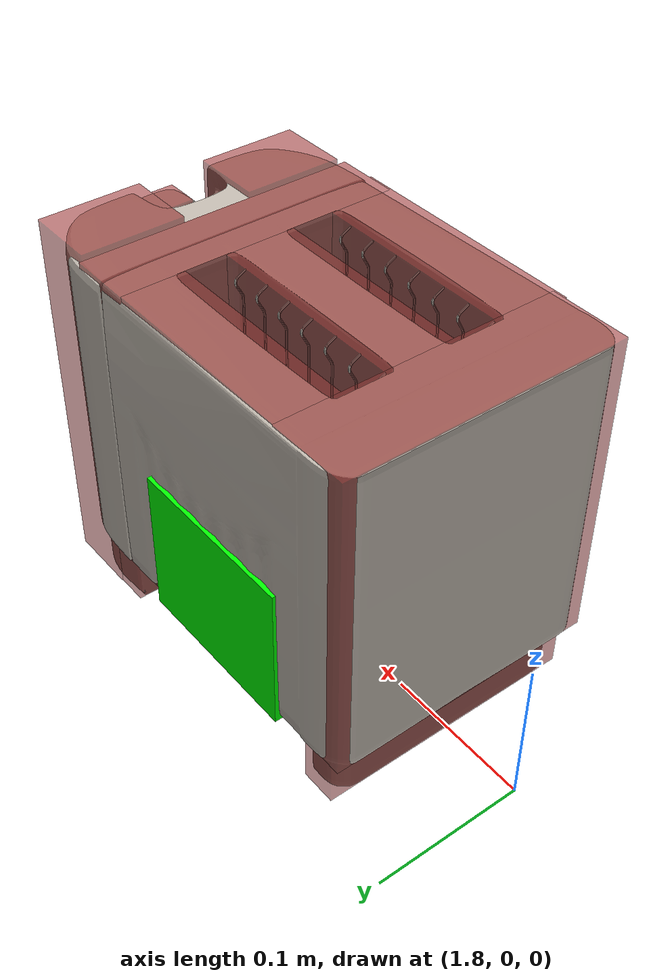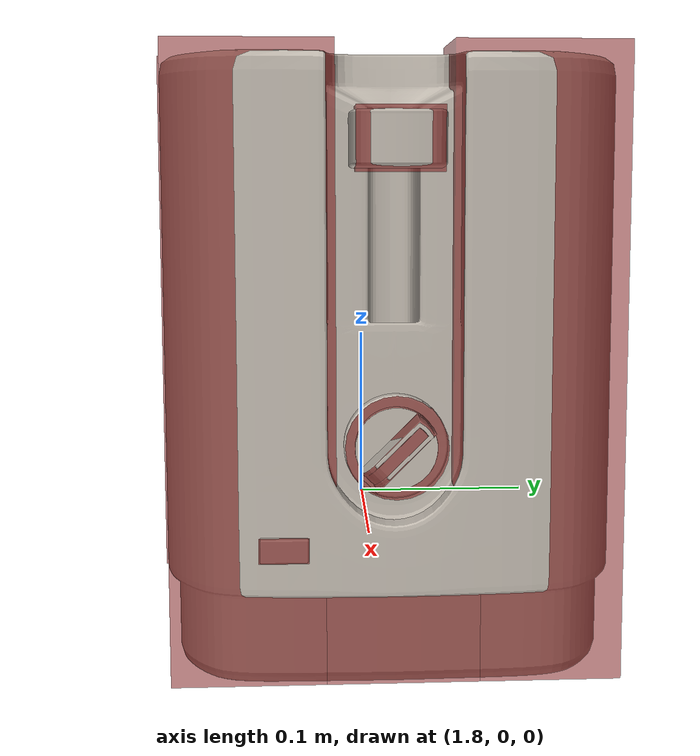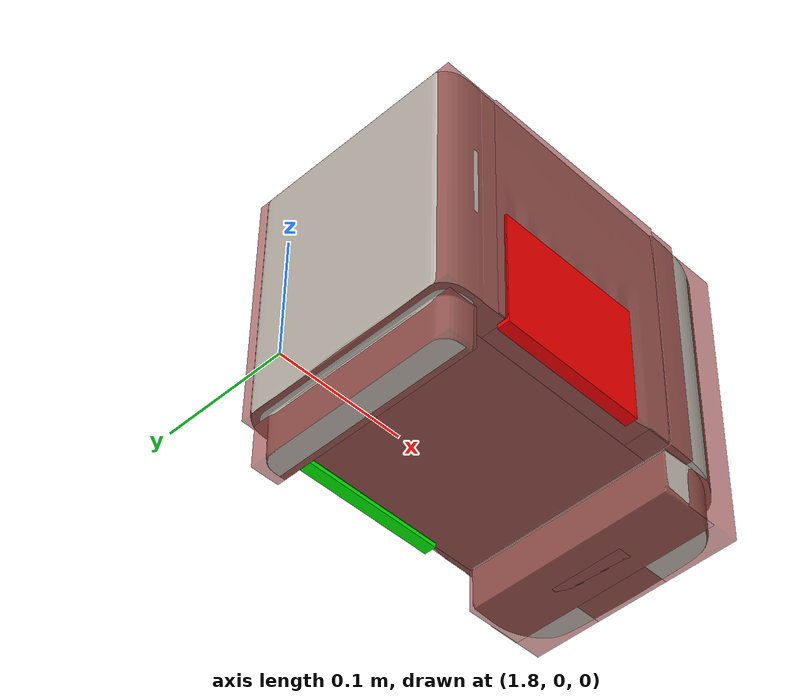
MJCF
<?xml version='1.0' encoding='UTF-8'?>
<mujoco model="model">
  <option timestep="0.002" gravity="0.0 0.0 -9.81"/>
  <compiler angle="radian"/>
  <asset>
    <mesh file="visuals/button_cancel.obj" name="button_cancel_vis"/>
    <mesh file="visuals/knob_doneness.obj" name="knob_doneness_vis"/>
    <mesh file="visuals/lever.obj" name="lever_vis"/>
    <mesh file="visuals/Body001.obj" name="Body001_vis"/>
    <mesh file="visuals/Body002.obj" name="Body002_vis"/>
    <texture file="visuals/T_BC001.png" name="Body001_material" type="2d"/>
    <material name="Body001_material" rgba="1 1 1 1.0" texture="Body001_material" shininess="0.4472135901451111" specular="0.5"/>
    <texture file="visuals/T_BC001.png" name="button_cancel_material" type="2d"/>
    <material name="button_cancel_material" rgba="1 1 1 1.0" texture="button_cancel_material" shininess="0.4472135901451111" specular="0.3103448502657381"/>
    <texture file="visuals/T_BC001.png" name="knob_doneness_material" type="2d"/>
    <material name="knob_doneness_material" rgba="1 1 1 1.0" texture="knob_doneness_material" shininess="0.4472135901451111" specular="0.3103448502657381"/>
    <texture file="visuals/T_BC001.png" name="lever_material" type="2d"/>
    <material name="lever_material" rgba="1 1 1 1.0" texture="lever_material" shininess="0.4472135901451111" specular="0.3103448502657381"/>
    <texture file="visuals/T_BC001.png" name="Body002_material" type="2d"/>
    <material name="Body002_material" rgba="1 1 1 1.0" texture="Body002_material" shininess="0.4472135901451111" specular="8"/>
  </asset>
  <default>
    <default class="visual">
      <geom conaffinity="0" contype="0" group="1" type="mesh"/>
    </default>
    <default class="collision_1">
      <geom group="0" rgba="0.5 0 0 0.5" solref="0.004 1" solimp="0.998 0.998 0.001"/>
    </default>
    <default class="collision_2">
      <geom group="0" rgba="0.5 0 0 0.5" solref="0.004 1" solimp="0.998 0.998 0.001"/>
    </default>
    <default class="collision_3">
      <geom group="0" rgba="0.5 0 0 0.5" solref="0.004 1" solimp="0.998 0.998 0.001"/>
    </default>
    <default class="collision_4">
      <geom group="0" rgba="0.5 0 0 0.5" solref="0.004 1" solimp="0.998 0.998 0.001"/>
    </default>
    <default class="collision_5">
      <geom group="0" rgba="0.5 0 0 0.5" solref="0.004 1" solimp="0.998 0.998 0.001"/>
    </default>
    <default class="spawn">
      <geom group="0" rgba="1 1 1 0.5" contype="0" conaffinity="0"/>
      <site group="0" rgba="1 1 1 0.5"/>
    </default>
    <default class="region">
      <geom group="1" conaffinity="0" contype="0" rgba="0 1 0 0" mass="0"/>
    </default>
  </default>
  <worldbody>
    <body name="toaster_root" pos="2.0 0.0 0.125" quat="0.70710678 0.0 0.0 0.70710678">
      <freejoint name="object_freejoint"/>
      <body name="object">
      <!-- Hand target markers for grasp reward -->
        <site name="left_grasp_marker" type="box" pos="0.09 0.04 -0.040" size="0.005 0.06 0.05" rgba="0 1 0 1"/>
        <site name="right_grasp_marker" type="box" pos="-0.09 0.04 -0.040" size="0.005 0.06 0.05" rgba="1 0 0 1"/>
        <geom name="left_grasp_marker_collision" type="box" pos="0.09 0.04 -0.040" size="0.005 0.06 0.05" rgba="0 1 0 0.2" class="collision_1" friction="2 0.5 0.05"/>
        <geom name="right_grasp_marker_collision" type="box" pos="-0.09 0.04 -0.040" size="0.005 0.06 0.05" rgba="1 0 0 0.2" class="collision_1" friction="2 0.5 0.05"/>
        <!-- Hand target markers for grasp reward -->
        <inertial pos="0 0 0" mass="1.10" diaginertia="0.010 0.008 0.006"/>
        <geom mesh="Body001_vis" type="mesh" solimp="0.998 0.998 0.001" solref="0.001 1" friction="0.95 0.3 0.1" class="visual" material="Body001_material"/>
        <geom type="box" pos="-0.0007909499108791351 0.1251961588859558 0.018136994913220406" size="0.09203831851482391 0.026545438915491104 0.10464654117822647" quat="1.0 0.0 0.0 0.0" class="collision_1"/>
        <geom type="box" pos="-0.0007909499108791351 -0.056842997670173645 0.018136968836188316" size="0.0920385867357254 0.021100157871842384 0.10464657098054886" quat="1.0 0.0 0.0 0.0" class="collision_1"/>
        <geom type="box" pos="0.00856953114271164 0.032807718962430954 -0.038557104766368866" size="0.07888726890087128 0.10514052212238312 0.047952938824892044" quat="1.0 0.0 0.0 0.0" class="collision_1"/>
        <geom type="box" pos="0.0557553730905056 -0.10189918428659439 0.002263070084154606" size="0.03337135538458824 0.023660745471715927 0.1240866631269455" quat="1.0 0.0 0.0 0.0" class="collision_1"/>
        <geom type="box" pos="-0.054832007735967636 -0.10189918428659439 0.0022632780019193888" size="0.03223841264843941 0.023660745471715927 0.1240868866443634" quat="1.0 0.0 0.0 0.0" class="collision_1"/>
        <geom type="box" pos="0.003287307918071747 -0.10189918428659439 -0.09818810969591141" size="0.029956890270113945 0.023661620914936066 0.023636309430003166" quat="1.0 0.0 0.0 0.0" class="collision_1"/>
        <geom type="box" pos="0.0003206567489542067 0.026389360427856445 0.018105398863554" size="0.022962937131524086 0.08072264492511749 0.10460329800844193" quat="1.0 0.0 0.0 0.0" class="collision_1"/>
        <geom type="box" pos="0.0704355463385582 0.026389360427856445 0.018105398863554" size="0.020348144695162773 0.08072096109390259 0.10460276156663895" quat="1.0 0.0 0.0 0.0" class="collision_1"/>
        <geom type="box" pos="-0.07212179154157639 0.026389360427856445 0.018105398863554" size="0.02188052050769329 0.08072096109390259 0.10460040718317032" quat="1.0 0.0 0.0 0.0" class="collision_1"/>
        <geom type="box" pos="0.0011962221469730139 -0.08025094866752625 -0.09818810969591141" size="0.08740923553705215 0.023531343787908554 0.023636309430003166" quat="1.0 0.0 0.0 0.0" class="collision_1"/>
        <geom type="box" pos="0.0011962221469730139 0.13135312497615814 -0.09848086535930634" size="0.08740923553705215 0.011703741736710072 0.023929066956043243" quat="1.0 0.0 0.0 0.0" class="collision_1"/>
        <body name="button_cancel">
          <inertial pos="0 0 0" mass="0.01" diaginertia="1e-6 1e-6 1e-6"/>
          <joint axis="0.0 1.0 0.0" pos="-0.04275631532073021 -0.12891976535320282 -0.06662700325250626" limited="true" name="button_cancel_joint" range="0.0 0.003" type="slide" damping="1" frictionloss="1" armature=".01" stiffness="4" springref="-1"/>
          <geom mesh="button_cancel_vis" type="mesh" solimp="0.998 0.998 0.001" solref="0.001 1" friction="0.95 0.3 0.1" class="visual" material="button_cancel_material"/>
          <geom class="collision_2" type="box" pos="-0.04275631532073021 -0.1303047090768814 -0.06662700325250626" size="0.009634476155042648 0.0014043422415852547 0.004607340320944786" quat="1.0 0.0 0.0 0.0" name="button_cancel_main"/>
        </body>
        <body name="knob_doneness">
          <inertial pos="0 0 0" mass="0.03" diaginertia="5e-6 5e-6 5e-6"/>
          <joint axis="0.0 1.0 0.0" pos="0.0003405599854886532 -0.12956508994102478 -0.027966000139713287" limited="true" name="knob_doneness_joint" range="0.0 4.625122517784973" type="hinge" damping="0.05" frictionloss="0.75" armature="1"/>
          <geom mesh="knob_doneness_vis" type="mesh" solimp="0.998 0.998 0.001" solref="0.001 1" friction="0.95 0.3 0.1" class="visual" material="knob_doneness_material"/>
          <geom type="cylinder" pos="0.0007184958667494357 -0.12336649000644684 -0.02810978889465332" size="0.01995346136391163 0.003967595752328634" quat="0.7071068286895752 0.7071067690849304 -1.5700924318127872e-16 -5.9269340452702814e-24" class="collision_3" friction="100 0.5 0.01"/>
          <geom class="collision_3" type="box" pos="0.0004032109573017806 -0.13425526022911072 -0.027904432266950607" size="0.004091683309525251 0.007059119641780853 0.015640471130609512" quat="0.9238795042037964 0.0 0.3826834559440613 0.0" name="knob_doneness_main" friction="100 0.5 0.01"/>
        </body>
        <body name="lever">
          <inertial pos="0 0 0" mass="0.07" diaginertia="2e-5 2e-5 2e-5"/>
          <joint axis="0.0 0.0 -1.0" pos="0.0002551083161961287 -0.13635873794555664 0.08920827507972717" limited="true" name="lever_joint" range="0.0 0.055" type="slide" damping="1" frictionloss="1" armature=".1" stiffness="3" springref="-0.5"/>
          <geom class="region" name="reg_slotR" type="box" pos="0.036202025823295116 0.03418431989848614 0.12308629974722862" size="0.01417303753644228 0.06502387721836567 0.07599996200203896"/>
          <geom class="region" name="reg_slotL" type="box" pos="-0.035859355926513672 0.03418431989848614 0.12308629974722862" size="0.014339363366365434 0.06502387721836567 0.07599996200203896"/>
          <geom mesh="lever_vis" type="mesh" solimp="0.998 0.998 0.001" solref="0.001 1" friction="0.95 0.3 0.1" class="visual" material="lever_material"/>
          <geom class="collision_4" type="box" pos="0.00031183630926534534 -0.1403096318244934 0.08907251060009003" size="0.015979310497641563 0.011509011499583721 0.011890672147274017" quat="1.0 0.0 0.0 0.0" name="lever_handle"/>
          <geom type="cylinder" pos="-0.0006598089821636677 -0.11287302523851395 0.08922652900218964" size="0.0040744030848145485 0.016815736889839172" quat="0.7071068286895752 -0.7071067690849304 -1.5700924318127872e-16 2.4643894772246815e-23" class="collision_4"/>
          <geom class="collision_4" type="box" pos="-0.03649313747882843 0.03180425986647606 0.06636987626552582" size="0.012500069104135036 0.06499999761581421 0.0016032829880714417" quat="1.0 0.0 0.0 0.0" name="slotL_floor"/>
          <geom class="collision_4" type="box" pos="0.03684080392122269 0.03180425986647606 0.06636987626552582" size="0.012500053271651268 0.06499999761581421 0.0016032829880714417" quat="1.0 0.0 0.0 0.0" name="slotR_floor"/>
        </body>
        <body name="Body002">
          <inertial pos="0 0 0" mass="0.09" diaginertia="5e-5 5e-5 5e-5"/>
          <geom mesh="Body002_vis" type="mesh" solimp="0.998 0.998 0.001" solref="0.001 1" friction="0.95 0.3 0.1" class="visual" material="Body002_material"/>
        </body>
        <geom class="region" name="reg_main" type="box" pos="0.0 0.012272685766220093 0.0" size="0.09384645318984985 0.14160863852500916 0.12340996956825256"/>
      </body>
    </body>
  </worldbody>
  <actuator>
    <motor name="button_cancel_joint_actuator" joint="button_cancel_joint" gear="0.2"/>
    <motor name="knob_doneness_joint_actuator" joint="knob_doneness_joint" gear="5"/>
    <motor name="lever_joint_actuator" joint="lever_joint" gear="1.5"/>
  </actuator>
</mujoco>
